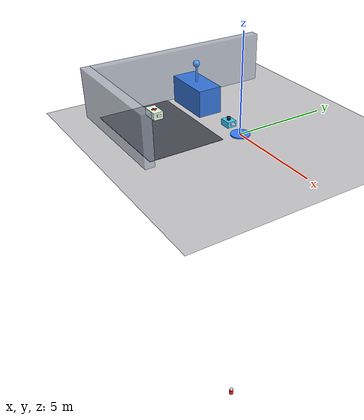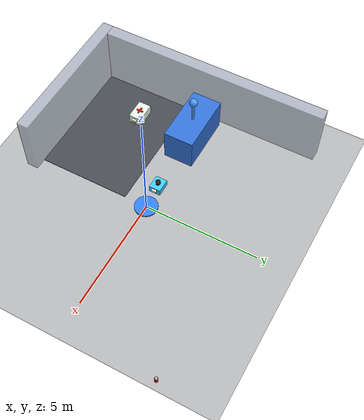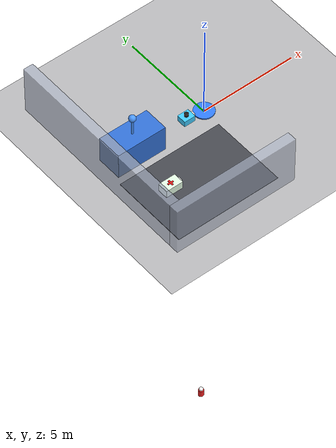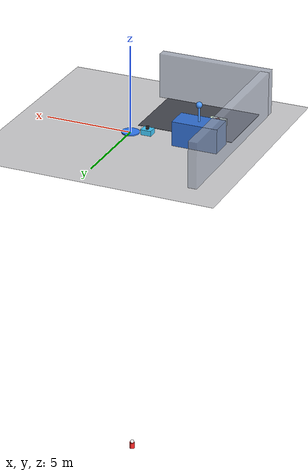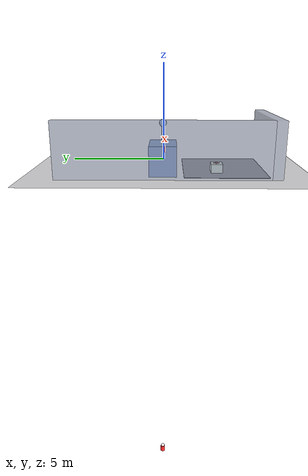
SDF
<sdf version="1.9">
 <world name="living_map_fire">
  <model name="ground">
   <static>true</static>
   <link name="l">
    <collision name="c"><geometry><plane><normal>0 0 1</normal><size>120 80</size></plane></geometry></collision>
    <visual name="v">
     <geometry><plane><normal>0 0 1</normal><size>120 80</size></plane></geometry>
     <material><ambient>0.16 0.17 0.2 1.0</ambient><diffuse>0.16 0.17 0.2 1.0</diffuse></material>
    </visual>
   </link>
  </model>
  <model name="slab0_15">
   <static>true</static>
   <pose>-2.750 -3.000 0.010 0 0 0</pose>
   <link name="l">
    <collision name="c"><geometry><box><size>5.500 4.000 0.020</size></box></geometry></collision>
    <visual name="v">
     <geometry><box><size>5.500 4.000 0.020</size></box></geometry>
     <material><ambient>0.28 0.29 0.32 1.0</ambient><diffuse>0.28 0.29 0.32 1.0</diffuse></material>
    </visual>
   </link>
  </model>
  <model name="wall0_13">
   <static>true</static>
   <pose>-2.750 -5.250 1.300 0 0 0</pose>
   <link name="l">
    <collision name="c"><geometry><box><size>6.500 0.500 2.600</size></box></geometry></collision>
    <visual name="v">
     <geometry><box><size>6.500 0.500 2.600</size></box></geometry>
     <material><ambient>0.62 0.65 0.72 0.75</ambient><diffuse>0.62 0.65 0.72 0.75</diffuse></material>
    </visual>
   </link>
  </model>
  <model name="wall0_14">
   <static>true</static>
   <pose>-5.750 0.000 1.300 0 0 0</pose>
   <link name="l">
    <collision name="c"><geometry><box><size>0.500 10.000 2.600</size></box></geometry></collision>
    <visual name="v">
     <geometry><box><size>0.500 10.000 2.600</size></box></geometry>
     <material><ambient>0.62 0.65 0.72 0.75</ambient><diffuse>0.62 0.65 0.72 0.75</diffuse></material>
    </visual>
   </link>
  </model>
  <model name="van_body">
   <static>true</static>
   <pose>-4.000 0.000 0.700 0 0 0</pose>
   <link name="l">
    <collision name="c"><geometry><box><size>2.600 1.300 1.400</size></box></geometry></collision>
    <visual name="v">
     <geometry><box><size>2.600 1.300 1.400</size></box></geometry>
     <material><ambient>0.2 0.45 0.85 1.0</ambient><diffuse>0.2 0.45 0.85 1.0</diffuse></material>
    </visual>
   </link>
  </model>
  <model name="van_antenna">
   <static>true</static>
   <pose>-4.000 0.000 1.808 0 0 0</pose>
   <link name="l">
    <visual name="v">
     <geometry><cylinder><radius>0.058</radius><length>0.933</length></cylinder></geometry>
     <material>
      <ambient>0.3 0.6 1 1</ambient>
      <diffuse>0.3 0.6 1 1</diffuse>
      <emissive>0.1 0.3 0.7 1</emissive>
     </material>
    </visual>
   </link>
  </model>
  <model name="van_dish">
   <static>true</static>
   <pose>-4.000 0.000 2.333 0 0 0</pose>
   <link name="l">
    <visual name="v">
     <geometry><sphere><radius>0.175</radius></sphere></geometry>
     <material>
      <ambient>0.3 0.6 1 1</ambient>
      <diffuse>0.3 0.6 1 1</diffuse>
      <emissive>0.2 0.5 1 1</emissive>
     </material>
    </visual>
   </link>
  </model>
  <model name="entrance_anchor">
   <static>true</static>
   <pose>0.000 0.000 0.030 0 0 0</pose>
   <link name="l">
    <visual name="v">
     <geometry><cylinder><radius>0.5</radius><length>0.06</length></cylinder></geometry>
     <material>
      <ambient>0.2 0.5 1 1</ambient>
      <diffuse>0.2 0.5 1 1</diffuse>
      <emissive>0.1 0.3 0.8 1</emissive>
     </material>
    </visual>
   </link>
  </model>
  <model name="writer">
   <static>false</static>
   <pose>-1.0 0.0 0.25 0 0 0</pose>
   <link name="l">
    <gravity>false</gravity>
    <inertial><mass>1</mass><inertia><ixx>0.1</ixx><iyy>0.1</iyy><izz>0.1</izz></inertia></inertial>
    <visual name="body">
     <geometry><box><size>0.6 0.5 0.3</size></box></geometry>
     <material><ambient>0.25 0.8 1 1.0</ambient><diffuse>0.25 0.8 1 1.0</diffuse></material>
    </visual>
    <visual name="lidar">
     <pose>0 0 0.22 0 0 0</pose>
     <geometry><cylinder><radius>0.1</radius><length>0.15</length></cylinder></geometry>
     <material><ambient>0.1 0.1 0.1 1.0</ambient><diffuse>0.1 0.1 0.1 1.0</diffuse></material>
    </visual>
    <visual name="nose">
     <pose>0.3 0 0.05 0 0 0</pose>
     <geometry><box><size>0.2 0.2 0.1</size></box></geometry>
     <material><ambient>1 1 1 1.0</ambient><diffuse>1 1 1 1.0</diffuse></material>
    </visual>
   </link>
  </model>
  <model name="ambulance">
   <static>false</static>
   <pose>-4.0 -2.6 0.25 0 0 0</pose>
   <link name="l">
    <gravity>false</gravity>
    <inertial><mass>1</mass><inertia><ixx>0.1</ixx><iyy>0.1</iyy><izz>0.1</izz></inertia></inertial>
    <visual name="body">
     <geometry><box><size>0.9 0.55 0.4</size></box></geometry>
     <material><ambient>0.9 1 0.9 1.0</ambient><diffuse>0.9 1 0.9 1.0</diffuse></material>
    </visual>
    <visual name="cross1">
     <pose>0 0 0.21 0 0 0</pose>
     <geometry><box><size>0.3 0.08 0.02</size></box></geometry>
     <material>
      <ambient>1 0.1 0.1 1.0</ambient>
      <diffuse>1 0.1 0.1 1.0</diffuse>
      <emissive>0.8 0 0 1</emissive>
     </material>
    </visual>
    <visual name="cross2">
     <pose>0 0 0.21 0 0 0</pose>
     <geometry><box><size>0.08 0.3 0.02</size></box></geometry>
     <material>
      <ambient>1 0.1 0.1 1.0</ambient>
      <diffuse>1 0.1 0.1 1.0</diffuse>
      <emissive>0.8 0 0 1</emissive>
     </material>
    </visual>
    <visual name="nose">
     <pose>0.45 0 0.05 0 0 0</pose>
     <geometry><box><size>0.2 0.2 0.1</size></box></geometry>
     <material><ambient>1 1 1 1.0</ambient><diffuse>1 1 1 1.0</diffuse></material>
    </visual>
   </link>
  </model>
  <model name="bcn_p0_0">
   <static>false</static>
   <pose>0 0 -20 0 0 0</pose>
   <link name="l">
    <gravity>false</gravity>
    <inertial><mass>1</mass><inertia><ixx>0.1</ixx><iyy>0.1</iyy><izz>0.1</izz></inertia></inertial>
    <visual name="b">
     <geometry><cylinder><radius>0.14</radius><length>0.36</length></cylinder></geometry>
     <material>
      <ambient>1 0.15 0.15 1.0</ambient>
      <diffuse>1 0.15 0.15 1.0</diffuse>
      <emissive>1 0.15 0.15 1</emissive>
     </material>
    </visual>
    <visual name="t">
     <pose>0 0 0.24 0 0 0</pose>
     <geometry><sphere><radius>0.11</radius></sphere></geometry>
     <material><ambient>1 1 1 1.0</ambient><diffuse>1 1 1 1.0</diffuse><emissive>1 1 1 1</emissive></material>
    </visual>
   </link>
  </model>
  <model name="bcn_p0_1">
   <static>false</static>
   <pose>0 0 -20 0 0 0</pose>
   <link name="l">
    <gravity>false</gravity>
    <inertial><mass>1</mass><inertia><ixx>0.1</ixx><iyy>0.1</iyy><izz>0.1</izz></inertia></inertial>
    <visual name="b">
     <geometry><cylinder><radius>0.14</radius><length>0.36</length></cylinder></geometry>
     <material>
      <ambient>1 0.15 0.15 1.0</ambient>
      <diffuse>1 0.15 0.15 1.0</diffuse>
      <emissive>1 0.15 0.15 1</emissive>
     </material>
    </visual>
    <visual name="t">
     <pose>0 0 0.24 0 0 0</pose>
     <geometry><sphere><radius>0.11</radius></sphere></geometry>
     <material><ambient>1 1 1 1.0</ambient><diffuse>1 1 1 1.0</diffuse><emissive>1 1 1 1</emissive></material>
    </visual>
   </link>
  </model>
  <model name="bcn_p0_2">
   <static>false</static>
   <pose>0 0 -20 0 0 0</pose>
   <link name="l">
    <gravity>false</gravity>
    <inertial><mass>1</mass><inertia><ixx>0.1</ixx><iyy>0.1</iyy><izz>0.1</izz></inertia></inertial>
    <visual name="b">
     <geometry><cylinder><radius>0.14</radius><length>0.36</length></cylinder></geometry>
     <material>
      <ambient>1 0.15 0.15 1.0</ambient>
      <diffuse>1 0.15 0.15 1.0</diffuse>
      <emissive>1 0.15 0.15 1</emissive>
     </material>
    </visual>
    <visual name="t">
     <pose>0 0 0.24 0 0 0</pose>
     <geometry><sphere><radius>0.11</radius></sphere></geometry>
     <material><ambient>1 1 1 1.0</ambient><diffuse>1 1 1 1.0</diffuse><emissive>1 1 1 1</emissive></material>
    </visual>
   </link>
  </model>
  <model name="bcn_p0_3">
   <static>false</static>
   <pose>0 0 -20 0 0 0</pose>
   <link name="l">
    <gravity>false</gravity>
    <inertial><mass>1</mass><inertia><ixx>0.1</ixx><iyy>0.1</iyy><izz>0.1</izz></inertia></inertial>
    <visual name="b">
     <geometry><cylinder><radius>0.14</radius><length>0.36</length></cylinder></geometry>
     <material>
      <ambient>1 0.15 0.15 1.0</ambient>
      <diffuse>1 0.15 0.15 1.0</diffuse>
      <emissive>1 0.15 0.15 1</emissive>
     </material>
    </visual>
    <visual name="t">
     <pose>0 0 0.24 0 0 0</pose>
     <geometry><sphere><radius>0.11</radius></sphere></geometry>
     <material><ambient>1 1 1 1.0</ambient><diffuse>1 1 1 1.0</diffuse><emissive>1 1 1 1</emissive></material>
    </visual>
   </link>
  </model>
  <model name="bcn_p0_4">
   <static>false</static>
   <pose>0 0 -20 0 0 0</pose>
   <link name="l">
    <gravity>false</gravity>
    <inertial><mass>1</mass><inertia><ixx>0.1</ixx><iyy>0.1</iyy><izz>0.1</izz></inertia></inertial>
    <visual name="b">
     <geometry><cylinder><radius>0.14</radius><length>0.36</length></cylinder></geometry>
     <material>
      <ambient>1 0.15 0.15 1.0</ambient>
      <diffuse>1 0.15 0.15 1.0</diffuse>
      <emissive>1 0.15 0.15 1</emissive>
     </material>
    </visual>
    <visual name="t">
     <pose>0 0 0.24 0 0 0</pose>
     <geometry><sphere><radius>0.11</radius></sphere></geometry>
     <material><ambient>1 1 1 1.0</ambient><diffuse>1 1 1 1.0</diffuse><emissive>1 1 1 1</emissive></material>
    </visual>
   </link>
  </model>
  <model name="bcn_p0_5">
   <static>false</static>
   <pose>0 0 -20 0 0 0</pose>
   <link name="l">
    <gravity>false</gravity>
    <inertial><mass>1</mass><inertia><ixx>0.1</ixx><iyy>0.1</iyy><izz>0.1</izz></inertia></inertial>
    <visual name="b">
     <geometry><cylinder><radius>0.14</radius><length>0.36</length></cylinder></geometry>
     <material>
      <ambient>1 0.15 0.15 1.0</ambient>
      <diffuse>1 0.15 0.15 1.0</diffuse>
      <emissive>1 0.15 0.15 1</emissive>
     </material>
    </visual>
    <visual name="t">
     <pose>0 0 0.24 0 0 0</pose>
     <geometry><sphere><radius>0.11</radius></sphere></geometry>
     <material><ambient>1 1 1 1.0</ambient><diffuse>1 1 1 1.0</diffuse><emissive>1 1 1 1</emissive></material>
    </visual>
   </link>
  </model>
 </world>
</sdf>
